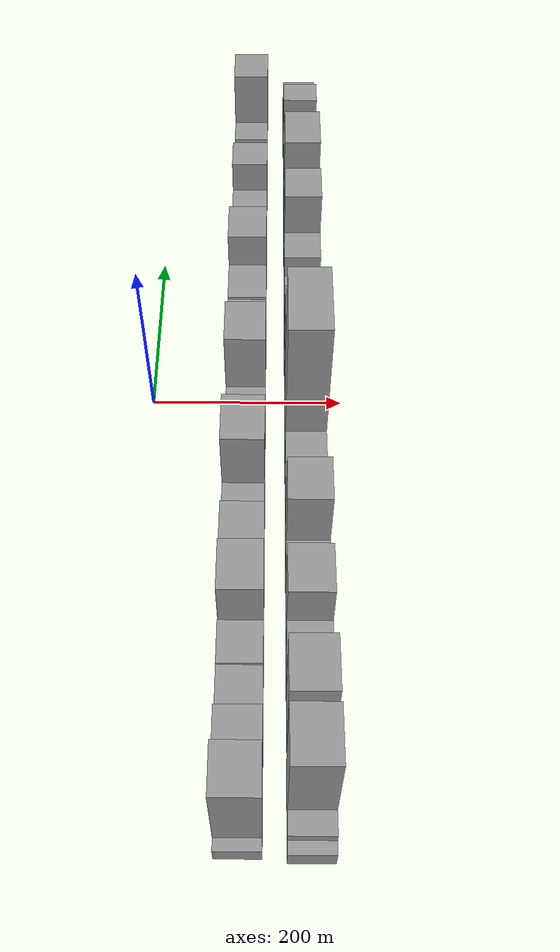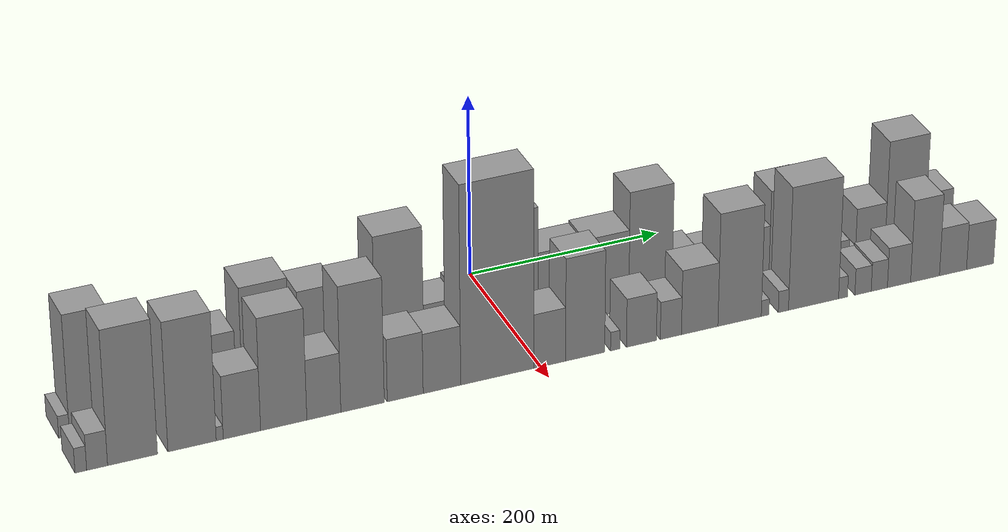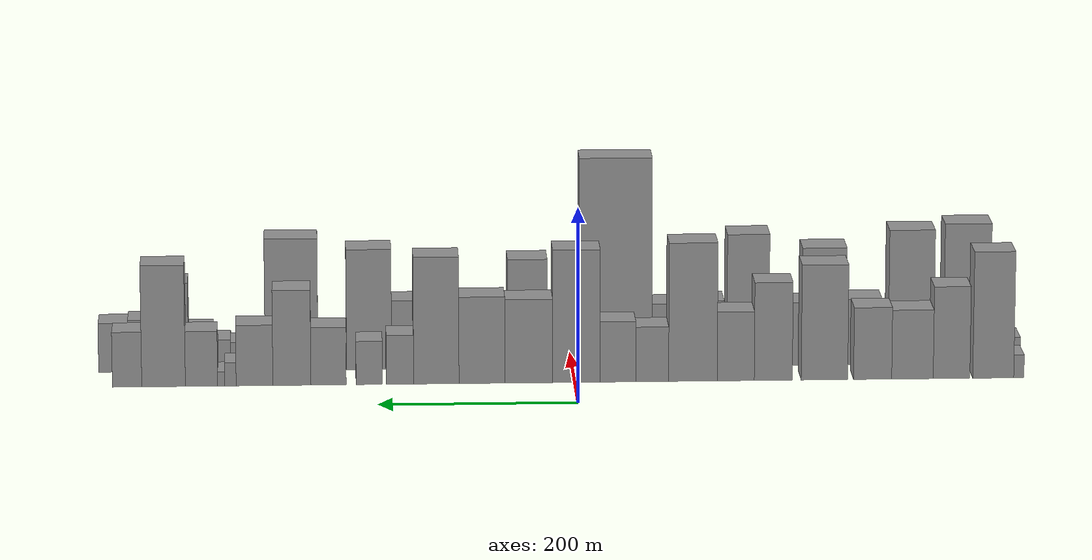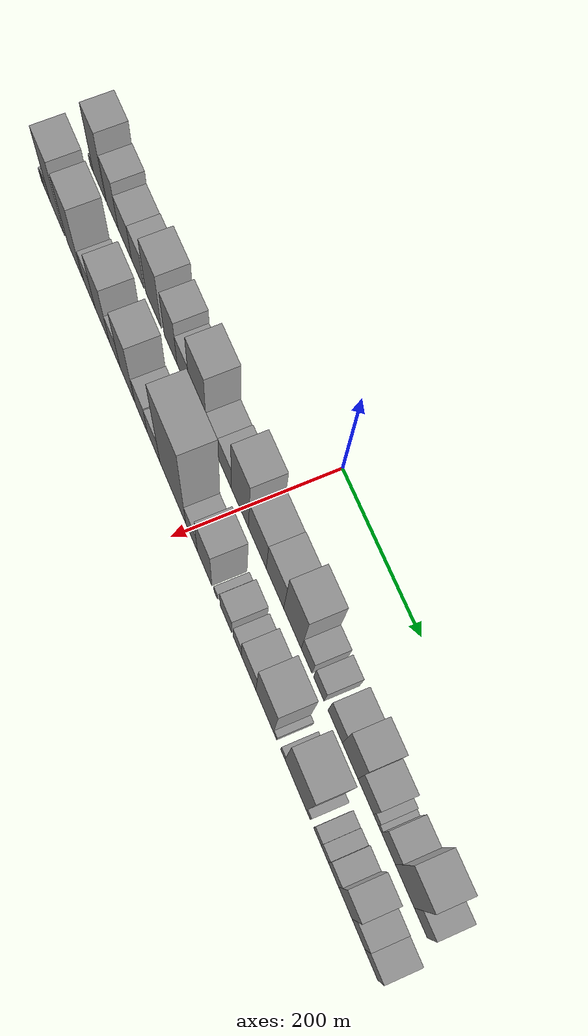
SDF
<sdf version="1.6">
 <world name="default">
  <scene>
   <sky><clouds><speed>12</speed></clouds></sky>
   <ambient>0.4 0.4 0.4 1</ambient>
   <background>0.7 0.7 0.7 1</background>
   <shadows>1</shadows>
  </scene>
  <gravity>0 0 -9.8066</gravity>
  <magnetic_field>6e-06 2.3e-05 -4.2e-05</magnetic_field>
  <physics default="0" name="default_physics" type="ode">
   <ode>
    <solver>
     <type>quick</type>
     <iters>10</iters>
     <sor>1.0</sor>
     <use_dynamic_moi_rescaling>0</use_dynamic_moi_rescaling>
    </solver>
    <constraints>
     <cfm>0</cfm>
     <erp>0.2</erp>
     <contact_max_correcting_vel>100</contact_max_correcting_vel>
     <contact_surface_layer>0.001</contact_surface_layer>
    </constraints>
   </ode>
   <max_step_size>0.004</max_step_size>
   <real_time_factor>1</real_time_factor>
   <real_time_update_rate>250</real_time_update_rate>
  </physics>
  <light name="sun" type="directional">
   <pose>0 0 10 0 0 0</pose>
   <diffuse>0.8 0.8 0.8 1</diffuse>
   <specular>0.2 0.2 0.2 1</specular>
   <attenuation>
    <range>1000</range>
    <constant>0.9</constant>
    <linear>0.01</linear>
    <quadratic>0.001</quadratic>
   </attenuation>
   <direction>-0.5 0.1 -0.9</direction>
  </light>
  <model name="building_1">
   <static>1</static>
   <pose>100.0000 -451.7780 0 0.000000 0.000000 0.000000</pose>
   <link name="link">
    <pose>0 0 12.00 0 0 0</pose>
    <collision name="collision"><geometry><box><size>40.0000 10.4439 24.0000</size></box></geometry></collision>
    <visual name="visual">
     <cast_shadows>0</cast_shadows>
     <geometry><box><size>40.0000 10.4439 24.0000</size></box></geometry>
     <material>
      <script>
       <uri>model://grey_wall/materials/scripts</uri>
       <uri>model://grey_wall/materials/textures</uri>
       <name>vrc/grey_wall</name>
      </script>
     </material>
    </visual>
   </link>
  </model>
  <model name="building_2">
   <static>1</static>
   <pose>100.0000 -425.6748 0 0.000000 0.000000 0.000000</pose>
   <link name="link">
    <pose>0 0 66.00 0 0 0</pose>
    <collision name="collision"><geometry><box><size>40.0000 41.7626 132.0000</size></box></geometry></collision>
    <visual name="visual">
     <cast_shadows>0</cast_shadows>
     <geometry><box><size>40.0000 41.7626 132.0000</size></box></geometry>
     <material>
      <script>
       <uri>model://grey_wall/materials/scripts</uri>
       <uri>model://grey_wall/materials/textures</uri>
       <name>vrc/grey_wall</name>
      </script>
     </material>
    </visual>
   </link>
  </model>
  <model name="building_3">
   <static>1</static>
   <pose>100.0000 -383.1339 0 0.000000 0.000000 0.000000</pose>
   <link name="link">
    <pose>0 0 48.00 0 0 0</pose>
    <collision name="collision"><geometry><box><size>40.0000 37.3193 96.0000</size></box></geometry></collision>
    <visual name="visual">
     <cast_shadows>0</cast_shadows>
     <geometry><box><size>40.0000 37.3193 96.0000</size></box></geometry>
     <material>
      <script>
       <uri>model://grey_wall/materials/scripts</uri>
       <uri>model://grey_wall/materials/textures</uri>
       <name>vrc/grey_wall</name>
      </script>
     </material>
    </visual>
   </link>
  </model>
  <model name="building_4">
   <static>1</static>
   <pose>100.0000 -343.3193 0 0.000000 0.000000 0.000000</pose>
   <link name="link">
    <pose>0 0 36.00 0 0 0</pose>
    <collision name="collision"><geometry><box><size>40.0000 42.3098 72.0000</size></box></geometry></collision>
    <visual name="visual">
     <cast_shadows>0</cast_shadows>
     <geometry><box><size>40.0000 42.3098 72.0000</size></box></geometry>
     <material>
      <script>
       <uri>model://grey_wall/materials/scripts</uri>
       <uri>model://grey_wall/materials/textures</uri>
       <name>vrc/grey_wall</name>
      </script>
     </material>
    </visual>
   </link>
  </model>
  <model name="building_5">
   <static>1</static>
   <pose>100.0000 -302.7857 0 0.000000 0.000000 0.000000</pose>
   <link name="link">
    <pose>0 0 37.50 0 0 0</pose>
    <collision name="collision"><geometry><box><size>40.0000 38.7575 75.0000</size></box></geometry></collision>
    <visual name="visual">
     <cast_shadows>0</cast_shadows>
     <geometry><box><size>40.0000 38.7575 75.0000</size></box></geometry>
     <material>
      <script>
       <uri>model://grey_wall/materials/scripts</uri>
       <uri>model://grey_wall/materials/textures</uri>
       <name>vrc/grey_wall</name>
      </script>
     </material>
    </visual>
   </link>
  </model>
  <model name="building_6">
   <static>1</static>
   <pose>100.0000 -253.7345 0 0.000000 0.000000 0.000000</pose>
   <link name="link">
    <pose>0 0 60.00 0 0 0</pose>
    <collision name="collision"><geometry><box><size>40.0000 47.3449 120.0000</size></box></geometry></collision>
    <visual name="visual">
     <cast_shadows>0</cast_shadows>
     <geometry><box><size>40.0000 47.3449 120.0000</size></box></geometry>
     <material>
      <script>
       <uri>model://grey_wall/materials/scripts</uri>
       <uri>model://grey_wall/materials/textures</uri>
       <name>vrc/grey_wall</name>
      </script>
     </material>
    </visual>
   </link>
  </model>
  <model name="building_7">
   <static>1</static>
   <pose>100.0000 -201.6931 0 0.000000 0.000000 0.000000</pose>
   <link name="link">
    <pose>0 0 51.00 0 0 0</pose>
    <collision name="collision"><geometry><box><size>40.0000 38.7377 102.0000</size></box></geometry></collision>
    <visual name="visual">
     <cast_shadows>0</cast_shadows>
     <geometry><box><size>40.0000 38.7377 102.0000</size></box></geometry>
     <material>
      <script>
       <uri>model://grey_wall/materials/scripts</uri>
       <uri>model://grey_wall/materials/textures</uri>
       <name>vrc/grey_wall</name>
      </script>
     </material>
    </visual>
   </link>
  </model>
  <model name="building_8">
   <static>1</static>
   <pose>100.0000 -163.5207 0 0.000000 0.000000 0.000000</pose>
   <link name="link">
    <pose>0 0 36.00 0 0 0</pose>
    <collision name="collision"><geometry><box><size>40.0000 37.6072 72.0000</size></box></geometry></collision>
    <visual name="visual">
     <cast_shadows>0</cast_shadows>
     <geometry><box><size>40.0000 37.6072 72.0000</size></box></geometry>
     <material>
      <script>
       <uri>model://grey_wall/materials/scripts</uri>
       <uri>model://grey_wall/materials/textures</uri>
       <name>vrc/grey_wall</name>
      </script>
     </material>
    </visual>
   </link>
  </model>
  <model name="building_9">
   <static>1</static>
   <pose>100.0000 -120.0330 0 0.000000 0.000000 0.000000</pose>
   <link name="link">
    <pose>0 0 72.00 0 0 0</pose>
    <collision name="collision"><geometry><box><size>40.0000 49.3682 144.0000</size></box></geometry></collision>
    <visual name="visual">
     <cast_shadows>0</cast_shadows>
     <geometry><box><size>40.0000 49.3682 144.0000</size></box></geometry>
     <material>
      <script>
       <uri>model://grey_wall/materials/scripts</uri>
       <uri>model://grey_wall/materials/textures</uri>
       <name>vrc/grey_wall</name>
      </script>
     </material>
    </visual>
   </link>
  </model>
  <model name="building_10">
   <static>1</static>
   <pose>100.0000 -78.6503 0 0.000000 0.000000 0.000000</pose>
   <link name="link">
    <pose>0 0 28.50 0 0 0</pose>
    <collision name="collision"><geometry><box><size>40.0000 33.3970 57.0000</size></box></geometry></collision>
    <visual name="visual">
     <cast_shadows>0</cast_shadows>
     <geometry><box><size>40.0000 33.3970 57.0000</size></box></geometry>
     <material>
      <script>
       <uri>model://grey_wall/materials/scripts</uri>
       <uri>model://grey_wall/materials/textures</uri>
       <name>vrc/grey_wall</name>
      </script>
     </material>
    </visual>
   </link>
  </model>
  <model name="building_11">
   <static>1</static>
   <pose>100.0000 -43.8970 0 0.000000 0.000000 0.000000</pose>
   <link name="link">
    <pose>0 0 31.50 0 0 0</pose>
    <collision name="collision"><geometry><box><size>40.0000 36.1096 63.0000</size></box></geometry></collision>
    <visual name="visual">
     <cast_shadows>0</cast_shadows>
     <geometry><box><size>40.0000 36.1096 63.0000</size></box></geometry>
     <material>
      <script>
       <uri>model://grey_wall/materials/scripts</uri>
       <uri>model://grey_wall/materials/textures</uri>
       <name>vrc/grey_wall</name>
      </script>
     </material>
    </visual>
   </link>
  </model>
  <model name="building_12">
   <static>1</static>
   <pose>100.0000 -1.7810 0 0.000000 0.000000 0.000000</pose>
   <link name="link">
    <pose>0 0 69.00 0 0 0</pose>
    <collision name="collision"><geometry><box><size>40.0000 48.1225 138.0000</size></box></geometry></collision>
    <visual name="visual">
     <cast_shadows>0</cast_shadows>
     <geometry><box><size>40.0000 48.1225 138.0000</size></box></geometry>
     <material>
      <script>
       <uri>model://grey_wall/materials/scripts</uri>
       <uri>model://grey_wall/materials/textures</uri>
       <name>vrc/grey_wall</name>
      </script>
     </material>
    </visual>
   </link>
  </model>
  <model name="building_13">
   <static>1</static>
   <pose>100.0000 46.5338 0 0.000000 0.000000 0.000000</pose>
   <link name="link">
    <pose>0 0 43.50 0 0 0</pose>
    <collision name="collision"><geometry><box><size>40.0000 48.5071 87.0000</size></box></geometry></collision>
    <visual name="visual">
     <cast_shadows>0</cast_shadows>
     <geometry><box><size>40.0000 48.5071 87.0000</size></box></geometry>
     <material>
      <script>
       <uri>model://grey_wall/materials/scripts</uri>
       <uri>model://grey_wall/materials/textures</uri>
       <name>vrc/grey_wall</name>
      </script>
     </material>
    </visual>
   </link>
  </model>
  <model name="building_14">
   <static>1</static>
   <pose>100.0000 94.0077 0 0.000000 0.000000 0.000000</pose>
   <link name="link">
    <pose>0 0 45.00 0 0 0</pose>
    <collision name="collision"><geometry><box><size>40.0000 46.4407 90.0000</size></box></geometry></collision>
    <visual name="visual">
     <cast_shadows>0</cast_shadows>
     <geometry><box><size>40.0000 46.4407 90.0000</size></box></geometry>
     <material>
      <script>
       <uri>model://grey_wall/materials/scripts</uri>
       <uri>model://grey_wall/materials/textures</uri>
       <name>vrc/grey_wall</name>
      </script>
     </material>
    </visual>
   </link>
  </model>
  <model name="building_15">
   <static>1</static>
   <pose>100.0000 140.1974 0 0.000000 0.000000 0.000000</pose>
   <link name="link">
    <pose>0 0 66.00 0 0 0</pose>
    <collision name="collision"><geometry><box><size>40.0000 45.9388 132.0000</size></box></geometry></collision>
    <visual name="visual">
     <cast_shadows>0</cast_shadows>
     <geometry><box><size>40.0000 45.9388 132.0000</size></box></geometry>
     <material>
      <script>
       <uri>model://grey_wall/materials/scripts</uri>
       <uri>model://grey_wall/materials/textures</uri>
       <name>vrc/grey_wall</name>
      </script>
     </material>
    </visual>
   </link>
  </model>
  <model name="building_16">
   <static>1</static>
   <pose>100.0000 176.9225 0 0.000000 0.000000 0.000000</pose>
   <link name="link">
    <pose>0 0 25.50 0 0 0</pose>
    <collision name="collision"><geometry><box><size>40.0000 27.5113 51.0000</size></box></geometry></collision>
    <visual name="visual">
     <cast_shadows>0</cast_shadows>
     <geometry><box><size>40.0000 27.5113 51.0000</size></box></geometry>
     <material>
      <script>
       <uri>model://grey_wall/materials/scripts</uri>
       <uri>model://grey_wall/materials/textures</uri>
       <name>vrc/grey_wall</name>
      </script>
     </material>
    </visual>
   </link>
  </model>
  <model name="building_17">
   <static>1</static>
   <pose>100.0000 208.0204 0 0.000000 0.000000 0.000000</pose>
   <link name="link">
    <pose>0 0 22.50 0 0 0</pose>
    <collision name="collision"><geometry><box><size>40.0000 26.6847 45.0000</size></box></geometry></collision>
    <visual name="visual">
     <cast_shadows>0</cast_shadows>
     <geometry><box><size>40.0000 26.6847 45.0000</size></box></geometry>
     <material>
      <script>
       <uri>model://grey_wall/materials/scripts</uri>
       <uri>model://grey_wall/materials/textures</uri>
       <name>vrc/grey_wall</name>
      </script>
     </material>
    </visual>
   </link>
  </model>
  <model name="building_18">
   <static>1</static>
   <pose>100.0000 249.1860 0 0.000000 0.000000 0.000000</pose>
   <link name="link">
    <pose>0 0 30.00 0 0 0</pose>
    <collision name="collision"><geometry><box><size>40.0000 35.6466 60.0000</size></box></geometry></collision>
    <visual name="visual">
     <cast_shadows>0</cast_shadows>
     <geometry><box><size>40.0000 35.6466 60.0000</size></box></geometry>
     <material>
      <script>
       <uri>model://grey_wall/materials/scripts</uri>
       <uri>model://grey_wall/materials/textures</uri>
       <name>vrc/grey_wall</name>
      </script>
     </material>
    </visual>
   </link>
  </model>
  <model name="building_19">
   <static>1</static>
   <pose>100.0000 286.2110 0 0.000000 0.000000 0.000000</pose>
   <link name="link">
    <pose>0 0 49.50 0 0 0</pose>
    <collision name="collision"><geometry><box><size>40.0000 38.4034 99.0000</size></box></geometry></collision>
    <visual name="visual">
     <cast_shadows>0</cast_shadows>
     <geometry><box><size>40.0000 38.4034 99.0000</size></box></geometry>
     <material>
      <script>
       <uri>model://grey_wall/materials/scripts</uri>
       <uri>model://grey_wall/materials/textures</uri>
       <name>vrc/grey_wall</name>
      </script>
     </material>
    </visual>
   </link>
  </model>
  <model name="building_20">
   <static>1</static>
   <pose>100.0000 323.9947 0 0.000000 0.000000 0.000000</pose>
   <link name="link">
    <pose>0 0 31.50 0 0 0</pose>
    <collision name="collision"><geometry><box><size>40.0000 37.1640 63.0000</size></box></geometry></collision>
    <visual name="visual">
     <cast_shadows>0</cast_shadows>
     <geometry><box><size>40.0000 37.1640 63.0000</size></box></geometry>
     <material>
      <script>
       <uri>model://grey_wall/materials/scripts</uri>
       <uri>model://grey_wall/materials/textures</uri>
       <name>vrc/grey_wall</name>
      </script>
     </material>
    </visual>
   </link>
  </model>
  <model name="building_21">
   <static>1</static>
   <pose>100.0000 348.3756 0 0.000000 0.000000 0.000000</pose>
   <link name="link">
    <pose>0 0 12.00 0 0 0</pose>
    <collision name="collision"><geometry><box><size>40.0000 11.5977 24.0000</size></box></geometry></collision>
    <visual name="visual">
     <cast_shadows>0</cast_shadows>
     <geometry><box><size>40.0000 11.5977 24.0000</size></box></geometry>
     <material>
      <script>
       <uri>model://grey_wall/materials/scripts</uri>
       <uri>model://grey_wall/materials/textures</uri>
       <name>vrc/grey_wall</name>
      </script>
     </material>
    </visual>
   </link>
  </model>
  <model name="building_22">
   <static>1</static>
   <pose>100.0000 357.6809 0 0.000000 0.000000 0.000000</pose>
   <link name="link">
    <pose>0 0 7.50 0 0 0</pose>
    <collision name="collision"><geometry><box><size>40.0000 7.0130 15.0000</size></box></geometry></collision>
    <visual name="visual">
     <cast_shadows>0</cast_shadows>
     <geometry><box><size>40.0000 7.0130 15.0000</size></box></geometry>
     <material>
      <script>
       <uri>model://grey_wall/materials/scripts</uri>
       <uri>model://grey_wall/materials/textures</uri>
       <name>vrc/grey_wall</name>
      </script>
     </material>
    </visual>
   </link>
  </model>
  <model name="building_23">
   <static>1</static>
   <pose>100.0000 377.4789 0 0.000000 0.000000 0.000000</pose>
   <link name="link">
    <pose>0 0 28.50 0 0 0</pose>
    <collision name="collision"><geometry><box><size>40.0000 32.5830 57.0000</size></box></geometry></collision>
    <visual name="visual">
     <cast_shadows>0</cast_shadows>
     <geometry><box><size>40.0000 32.5830 57.0000</size></box></geometry>
     <material>
      <script>
       <uri>model://grey_wall/materials/scripts</uri>
       <uri>model://grey_wall/materials/textures</uri>
       <name>vrc/grey_wall</name>
      </script>
     </material>
    </visual>
   </link>
  </model>
  <model name="building_24">
   <static>1</static>
   <pose>100.0000 415.7786 0 0.000000 0.000000 0.000000</pose>
   <link name="link">
    <pose>0 0 63.00 0 0 0</pose>
    <collision name="collision"><geometry><box><size>40.0000 44.0164 126.0000</size></box></geometry></collision>
    <visual name="visual">
     <cast_shadows>0</cast_shadows>
     <geometry><box><size>40.0000 44.0164 126.0000</size></box></geometry>
     <material>
      <script>
       <uri>model://grey_wall/materials/scripts</uri>
       <uri>model://grey_wall/materials/textures</uri>
       <name>vrc/grey_wall</name>
      </script>
     </material>
    </visual>
   </link>
  </model>
  <model name="building_25">
   <static>1</static>
   <pose>100.0000 452.5934 0 0.000000 0.000000 0.000000</pose>
   <link name="link">
    <pose>0 0 28.50 0 0 0</pose>
    <collision name="collision"><geometry><box><size>40.0000 29.6131 57.0000</size></box></geometry></collision>
    <visual name="visual">
     <cast_shadows>0</cast_shadows>
     <geometry><box><size>40.0000 29.6131 57.0000</size></box></geometry>
     <material>
      <script>
       <uri>model://grey_wall/materials/scripts</uri>
       <uri>model://grey_wall/materials/textures</uri>
       <name>vrc/grey_wall</name>
      </script>
     </material>
    </visual>
   </link>
  </model>
  <model name="building_26">
   <static>1</static>
   <pose>160.0000 -454.4450 0 0.000000 0.000000 0.000000</pose>
   <link name="link">
    <pose>0 0 13.50 0 0 0</pose>
    <collision name="collision"><geometry><box><size>40.0000 11.1100 27.0000</size></box></geometry></collision>
    <visual name="visual">
     <cast_shadows>0</cast_shadows>
     <geometry><box><size>40.0000 11.1100 27.0000</size></box></geometry>
     <material>
      <script>
       <uri>model://grey_wall/materials/scripts</uri>
       <uri>model://grey_wall/materials/textures</uri>
       <name>vrc/grey_wall</name>
      </script>
     </material>
    </visual>
   </link>
  </model>
  <model name="building_27">
   <static>1</static>
   <pose>160.0000 -438.9245 0 0.000000 0.000000 0.000000</pose>
   <link name="link">
    <pose>0 0 19.50 0 0 0</pose>
    <collision name="collision"><geometry><box><size>40.0000 19.9308 39.0000</size></box></geometry></collision>
    <visual name="visual">
     <cast_shadows>0</cast_shadows>
     <geometry><box><size>40.0000 19.9308 39.0000</size></box></geometry>
     <material>
      <script>
       <uri>model://grey_wall/materials/scripts</uri>
       <uri>model://grey_wall/materials/textures</uri>
       <name>vrc/grey_wall</name>
      </script>
     </material>
    </visual>
   </link>
  </model>
  <model name="building_28">
   <static>1</static>
   <pose>160.0000 -404.9821 0 0.000000 0.000000 0.000000</pose>
   <link name="link">
    <pose>0 0 73.50 0 0 0</pose>
    <collision name="collision"><geometry><box><size>40.0000 47.9540 147.0000</size></box></geometry></collision>
    <visual name="visual">
     <cast_shadows>0</cast_shadows>
     <geometry><box><size>40.0000 47.9540 147.0000</size></box></geometry>
     <material>
      <script>
       <uri>model://grey_wall/materials/scripts</uri>
       <uri>model://grey_wall/materials/textures</uri>
       <name>vrc/grey_wall</name>
      </script>
     </material>
    </visual>
   </link>
  </model>
  <model name="building_29">
   <static>1</static>
   <pose>160.0000 -347.6363 0 0.000000 0.000000 0.000000</pose>
   <link name="link">
    <pose>0 0 70.50 0 0 0</pose>
    <collision name="collision"><geometry><box><size>40.0000 46.7377 141.0000</size></box></geometry></collision>
    <visual name="visual">
     <cast_shadows>0</cast_shadows>
     <geometry><box><size>40.0000 46.7377 141.0000</size></box></geometry>
     <material>
      <script>
       <uri>model://grey_wall/materials/scripts</uri>
       <uri>model://grey_wall/materials/textures</uri>
       <name>vrc/grey_wall</name>
      </script>
     </material>
    </visual>
   </link>
  </model>
  <model name="building_30">
   <static>1</static>
   <pose>160.0000 -320.8254 0 0.000000 0.000000 0.000000</pose>
   <link name="link">
    <pose>0 0 7.50 0 0 0</pose>
    <collision name="collision"><geometry><box><size>40.0000 6.8840 15.0000</size></box></geometry></collision>
    <visual name="visual">
     <cast_shadows>0</cast_shadows>
     <geometry><box><size>40.0000 6.8840 15.0000</size></box></geometry>
     <material>
      <script>
       <uri>model://grey_wall/materials/scripts</uri>
       <uri>model://grey_wall/materials/textures</uri>
       <name>vrc/grey_wall</name>
      </script>
     </material>
    </visual>
   </link>
  </model>
  <model name="building_31">
   <static>1</static>
   <pose>160.0000 -299.1283 0 0.000000 0.000000 0.000000</pose>
   <link name="link">
    <pose>0 0 34.50 0 0 0</pose>
    <collision name="collision"><geometry><box><size>40.0000 36.5103 69.0000</size></box></geometry></collision>
    <visual name="visual">
     <cast_shadows>0</cast_shadows>
     <geometry><box><size>40.0000 36.5103 69.0000</size></box></geometry>
     <material>
      <script>
       <uri>model://grey_wall/materials/scripts</uri>
       <uri>model://grey_wall/materials/textures</uri>
       <name>vrc/grey_wall</name>
      </script>
     </material>
    </visual>
   </link>
  </model>
  <model name="building_32">
   <static>1</static>
   <pose>160.0000 -258.1585 0 0.000000 0.000000 0.000000</pose>
   <link name="link">
    <pose>0 0 61.50 0 0 0</pose>
    <collision name="collision"><geometry><box><size>40.0000 45.4293 123.0000</size></box></geometry></collision>
    <visual name="visual">
     <cast_shadows>0</cast_shadows>
     <geometry><box><size>40.0000 45.4293 123.0000</size></box></geometry>
     <material>
      <script>
       <uri>model://grey_wall/materials/scripts</uri>
       <uri>model://grey_wall/materials/textures</uri>
       <name>vrc/grey_wall</name>
      </script>
     </material>
    </visual>
   </link>
  </model>
  <model name="building_33">
   <static>1</static>
   <pose>160.0000 -218.6022 0 0.000000 0.000000 0.000000</pose>
   <link name="link">
    <pose>0 0 33.00 0 0 0</pose>
    <collision name="collision"><geometry><box><size>40.0000 33.6833 66.0000</size></box></geometry></collision>
    <visual name="visual">
     <cast_shadows>0</cast_shadows>
     <geometry><box><size>40.0000 33.6833 66.0000</size></box></geometry>
     <material>
      <script>
       <uri>model://grey_wall/materials/scripts</uri>
       <uri>model://grey_wall/materials/textures</uri>
       <name>vrc/grey_wall</name>
      </script>
     </material>
    </visual>
   </link>
  </model>
  <model name="building_34">
   <static>1</static>
   <pose>160.0000 -180.1254 0 0.000000 0.000000 0.000000</pose>
   <link name="link">
    <pose>0 0 69.00 0 0 0</pose>
    <collision name="collision"><geometry><box><size>40.0000 43.2702 138.0000</size></box></geometry></collision>
    <visual name="visual">
     <cast_shadows>0</cast_shadows>
     <geometry><box><size>40.0000 43.2702 138.0000</size></box></geometry>
     <material>
      <script>
       <uri>model://grey_wall/materials/scripts</uri>
       <uri>model://grey_wall/materials/textures</uri>
       <name>vrc/grey_wall</name>
      </script>
     </material>
    </visual>
   </link>
  </model>
  <model name="building_35">
   <static>1</static>
   <pose>160.0000 -137.4961 0 0.000000 0.000000 0.000000</pose>
   <link name="link">
    <pose>0 0 34.50 0 0 0</pose>
    <collision name="collision"><geometry><box><size>40.0000 35.9885 69.0000</size></box></geometry></collision>
    <visual name="visual">
     <cast_shadows>0</cast_shadows>
     <geometry><box><size>40.0000 35.9885 69.0000</size></box></geometry>
     <material>
      <script>
       <uri>model://grey_wall/materials/scripts</uri>
       <uri>model://grey_wall/materials/textures</uri>
       <name>vrc/grey_wall</name>
      </script>
     </material>
    </visual>
   </link>
  </model>
  <model name="building_36">
   <static>1</static>
   <pose>160.0000 -100.5330 0 0.000000 0.000000 0.000000</pose>
   <link name="link">
    <pose>0 0 33.00 0 0 0</pose>
    <collision name="collision"><geometry><box><size>40.0000 37.9376 66.0000</size></box></geometry></collision>
    <visual name="visual">
     <cast_shadows>0</cast_shadows>
     <geometry><box><size>40.0000 37.9376 66.0000</size></box></geometry>
     <material>
      <script>
       <uri>model://grey_wall/materials/scripts</uri>
       <uri>model://grey_wall/materials/textures</uri>
       <name>vrc/grey_wall</name>
      </script>
     </material>
    </visual>
   </link>
  </model>
  <model name="building_37">
   <static>1</static>
   <pose>160.0000 -44.4151 0 0.000000 0.000000 0.000000</pose>
   <link name="link">
    <pose>0 0 109.50 0 0 0</pose>
    <collision name="collision"><geometry><box><size>40.0000 74.2981 219.0000</size></box></geometry></collision>
    <visual name="visual">
     <cast_shadows>0</cast_shadows>
     <geometry><box><size>40.0000 74.2981 219.0000</size></box></geometry>
     <material>
      <script>
       <uri>model://grey_wall/materials/scripts</uri>
       <uri>model://grey_wall/materials/textures</uri>
       <name>vrc/grey_wall</name>
      </script>
     </material>
    </visual>
   </link>
  </model>
  <model name="building_38">
   <static>1</static>
   <pose>160.0000 9.1326 0 0.000000 0.000000 0.000000</pose>
   <link name="link">
    <pose>0 0 30.00 0 0 0</pose>
    <collision name="collision"><geometry><box><size>40.0000 32.7973 60.0000</size></box></geometry></collision>
    <visual name="visual">
     <cast_shadows>0</cast_shadows>
     <geometry><box><size>40.0000 32.7973 60.0000</size></box></geometry>
     <material>
      <script>
       <uri>model://grey_wall/materials/scripts</uri>
       <uri>model://grey_wall/materials/textures</uri>
       <name>vrc/grey_wall</name>
      </script>
     </material>
    </visual>
   </link>
  </model>
  <model name="building_39">
   <static>1</static>
   <pose>160.0000 45.7637 0 0.000000 0.000000 0.000000</pose>
   <link name="link">
    <pose>0 0 57.00 0 0 0</pose>
    <collision name="collision"><geometry><box><size>40.0000 40.4648 114.0000</size></box></geometry></collision>
    <visual name="visual">
     <cast_shadows>0</cast_shadows>
     <geometry><box><size>40.0000 40.4648 114.0000</size></box></geometry>
     <material>
      <script>
       <uri>model://grey_wall/materials/scripts</uri>
       <uri>model://grey_wall/materials/textures</uri>
       <name>vrc/grey_wall</name>
      </script>
     </material>
    </visual>
   </link>
  </model>
  <model name="building_40">
   <static>1</static>
   <pose>160.0000 76.8066 0 0.000000 0.000000 0.000000</pose>
   <link name="link">
    <pose>0 0 10.50 0 0 0</pose>
    <collision name="collision"><geometry><box><size>40.0000 9.6211 21.0000</size></box></geometry></collision>
    <visual name="visual">
     <cast_shadows>0</cast_shadows>
     <geometry><box><size>40.0000 9.6211 21.0000</size></box></geometry>
     <material>
      <script>
       <uri>model://grey_wall/materials/scripts</uri>
       <uri>model://grey_wall/materials/textures</uri>
       <name>vrc/grey_wall</name>
      </script>
     </material>
    </visual>
   </link>
  </model>
  <model name="building_41">
   <static>1</static>
   <pose>160.0000 104.2655 0 0.000000 0.000000 0.000000</pose>
   <link name="link">
    <pose>0 0 27.00 0 0 0</pose>
    <collision name="collision"><geometry><box><size>40.0000 31.2967 54.0000</size></box></geometry></collision>
    <visual name="visual">
     <cast_shadows>0</cast_shadows>
     <geometry><box><size>40.0000 31.2967 54.0000</size></box></geometry>
     <material>
      <script>
       <uri>model://grey_wall/materials/scripts</uri>
       <uri>model://grey_wall/materials/textures</uri>
       <name>vrc/grey_wall</name>
      </script>
     </material>
    </visual>
   </link>
  </model>
  <model name="building_42">
   <static>1</static>
   <pose>160.0000 135.0148 0 0.000000 0.000000 0.000000</pose>
   <link name="link">
    <pose>0 0 21.00 0 0 0</pose>
    <collision name="collision"><geometry><box><size>40.0000 22.2020 42.0000</size></box></geometry></collision>
    <visual name="visual">
     <cast_shadows>0</cast_shadows>
     <geometry><box><size>40.0000 22.2020 42.0000</size></box></geometry>
     <material>
      <script>
       <uri>model://grey_wall/materials/scripts</uri>
       <uri>model://grey_wall/materials/textures</uri>
       <name>vrc/grey_wall</name>
      </script>
     </material>
    </visual>
   </link>
  </model>
  <model name="building_43">
   <static>1</static>
   <pose>160.0000 165.3646 0 0.000000 0.000000 0.000000</pose>
   <link name="link">
    <pose>0 0 36.00 0 0 0</pose>
    <collision name="collision"><geometry><box><size>40.0000 38.4974 72.0000</size></box></geometry></collision>
    <visual name="visual">
     <cast_shadows>0</cast_shadows>
     <geometry><box><size>40.0000 38.4974 72.0000</size></box></geometry>
     <material>
      <script>
       <uri>model://grey_wall/materials/scripts</uri>
       <uri>model://grey_wall/materials/textures</uri>
       <name>vrc/grey_wall</name>
      </script>
     </material>
    </visual>
   </link>
  </model>
  <model name="building_44">
   <static>1</static>
   <pose>160.0000 207.6173 0 0.000000 0.000000 0.000000</pose>
   <link name="link">
    <pose>0 0 63.00 0 0 0</pose>
    <collision name="collision"><geometry><box><size>40.0000 46.0081 126.0000</size></box></geometry></collision>
    <visual name="visual">
     <cast_shadows>0</cast_shadows>
     <geometry><box><size>40.0000 46.0081 126.0000</size></box></geometry>
     <material>
      <script>
       <uri>model://grey_wall/materials/scripts</uri>
       <uri>model://grey_wall/materials/textures</uri>
       <name>vrc/grey_wall</name>
      </script>
     </material>
    </visual>
   </link>
  </model>
  <model name="building_45">
   <static>1</static>
   <pose>160.0000 234.7247 0 0.000000 0.000000 0.000000</pose>
   <link name="link">
    <pose>0 0 9.00 0 0 0</pose>
    <collision name="collision"><geometry><box><size>40.0000 8.2066 18.0000</size></box></geometry></collision>
    <visual name="visual">
     <cast_shadows>0</cast_shadows>
     <geometry><box><size>40.0000 8.2066 18.0000</size></box></geometry>
     <material>
      <script>
       <uri>model://grey_wall/materials/scripts</uri>
       <uri>model://grey_wall/materials/textures</uri>
       <name>vrc/grey_wall</name>
      </script>
     </material>
    </visual>
   </link>
  </model>
  <model name="building_46">
   <static>1</static>
   <pose>160.0000 254.2517 0 0.000000 0.000000 0.000000</pose>
   <link name="link">
    <pose>0 0 12.00 0 0 0</pose>
    <collision name="collision"><geometry><box><size>40.0000 10.8474 24.0000</size></box></geometry></collision>
    <visual name="visual">
     <cast_shadows>0</cast_shadows>
     <geometry><box><size>40.0000 10.8474 24.0000</size></box></geometry>
     <material>
      <script>
       <uri>model://grey_wall/materials/scripts</uri>
       <uri>model://grey_wall/materials/textures</uri>
       <name>vrc/grey_wall</name>
      </script>
     </material>
    </visual>
   </link>
  </model>
  <model name="building_47">
   <static>1</static>
   <pose>160.0000 286.6121 0 0.000000 0.000000 0.000000</pose>
   <link name="link">
    <pose>0 0 69.00 0 0 0</pose>
    <collision name="collision"><geometry><box><size>40.0000 53.8734 138.0000</size></box></geometry></collision>
    <visual name="visual">
     <cast_shadows>0</cast_shadows>
     <geometry><box><size>40.0000 53.8734 138.0000</size></box></geometry>
     <material>
      <script>
       <uri>model://grey_wall/materials/scripts</uri>
       <uri>model://grey_wall/materials/textures</uri>
       <name>vrc/grey_wall</name>
      </script>
     </material>
    </visual>
   </link>
  </model>
  <model name="building_48">
   <static>1</static>
   <pose>160.0000 318.3776 0 0.000000 0.000000 0.000000</pose>
   <link name="link">
    <pose>0 0 12.00 0 0 0</pose>
    <collision name="collision"><geometry><box><size>40.0000 9.6577 24.0000</size></box></geometry></collision>
    <visual name="visual">
     <cast_shadows>0</cast_shadows>
     <geometry><box><size>40.0000 9.6577 24.0000</size></box></geometry>
     <material>
      <script>
       <uri>model://grey_wall/materials/scripts</uri>
       <uri>model://grey_wall/materials/textures</uri>
       <name>vrc/grey_wall</name>
      </script>
     </material>
    </visual>
   </link>
  </model>
  <model name="building_49">
   <static>1</static>
   <pose>160.0000 340.0626 0 0.000000 0.000000 0.000000</pose>
   <link name="link">
    <pose>0 0 15.00 0 0 0</pose>
    <collision name="collision"><geometry><box><size>40.0000 17.7123 30.0000</size></box></geometry></collision>
    <visual name="visual">
     <cast_shadows>0</cast_shadows>
     <geometry><box><size>40.0000 17.7123 30.0000</size></box></geometry>
     <material>
      <script>
       <uri>model://grey_wall/materials/scripts</uri>
       <uri>model://grey_wall/materials/textures</uri>
       <name>vrc/grey_wall</name>
      </script>
     </material>
    </visual>
   </link>
  </model>
  <model name="building_50">
   <static>1</static>
   <pose>160.0000 357.7189 0 0.000000 0.000000 0.000000</pose>
   <link name="link">
    <pose>0 0 16.50 0 0 0</pose>
    <collision name="collision"><geometry><box><size>40.0000 17.6002 33.0000</size></box></geometry></collision>
    <visual name="visual">
     <cast_shadows>0</cast_shadows>
     <geometry><box><size>40.0000 17.6002 33.0000</size></box></geometry>
     <material>
      <script>
       <uri>model://grey_wall/materials/scripts</uri>
       <uri>model://grey_wall/materials/textures</uri>
       <name>vrc/grey_wall</name>
      </script>
     </material>
    </visual>
   </link>
  </model>
  <model name="building_51">
   <static>1</static>
   <pose>160.0000 379.1594 0 0.000000 0.000000 0.000000</pose>
   <link name="link">
    <pose>0 0 22.50 0 0 0</pose>
    <collision name="collision"><geometry><box><size>40.0000 25.2810 45.0000</size></box></geometry></collision>
    <visual name="visual">
     <cast_shadows>0</cast_shadows>
     <geometry><box><size>40.0000 25.2810 45.0000</size></box></geometry>
     <material>
      <script>
       <uri>model://grey_wall/materials/scripts</uri>
       <uri>model://grey_wall/materials/textures</uri>
       <name>vrc/grey_wall</name>
      </script>
     </material>
    </visual>
   </link>
  </model>
  <model name="building_52">
   <static>1</static>
   <pose>160.0000 407.6379 0 0.000000 0.000000 0.000000</pose>
   <link name="link">
    <pose>0 0 46.50 0 0 0</pose>
    <collision name="collision"><geometry><box><size>40.0000 31.6759 93.0000</size></box></geometry></collision>
    <visual name="visual">
     <cast_shadows>0</cast_shadows>
     <geometry><box><size>40.0000 31.6759 93.0000</size></box></geometry>
     <material>
      <script>
       <uri>model://grey_wall/materials/scripts</uri>
       <uri>model://grey_wall/materials/textures</uri>
       <name>vrc/grey_wall</name>
      </script>
     </material>
    </visual>
   </link>
  </model>
  <model name="building_53">
   <static>1</static>
   <pose>160.0000 438.3774 0 0.000000 0.000000 0.000000</pose>
   <link name="link">
    <pose>0 0 27.00 0 0 0</pose>
    <collision name="collision"><geometry><box><size>40.0000 29.8031 54.0000</size></box></geometry></collision>
    <visual name="visual">
     <cast_shadows>0</cast_shadows>
     <geometry><box><size>40.0000 29.8031 54.0000</size></box></geometry>
     <material>
      <script>
       <uri>model://grey_wall/materials/scripts</uri>
       <uri>model://grey_wall/materials/textures</uri>
       <name>vrc/grey_wall</name>
      </script>
     </material>
    </visual>
   </link>
  </model>
  <model name="building_54">
   <static>1</static>
   <pose>160.0000 468.2638 0 0.000000 0.000000 0.000000</pose>
   <link name="link">
    <pose>0 0 25.50 0 0 0</pose>
    <collision name="collision"><geometry><box><size>40.0000 29.9698 51.0000</size></box></geometry></collision>
    <visual name="visual">
     <cast_shadows>0</cast_shadows>
     <geometry><box><size>40.0000 29.9698 51.0000</size></box></geometry>
     <material>
      <script>
       <uri>model://grey_wall/materials/scripts</uri>
       <uri>model://grey_wall/materials/textures</uri>
       <name>vrc/grey_wall</name>
      </script>
     </material>
    </visual>
   </link>
  </model>
 </world>
</sdf>
